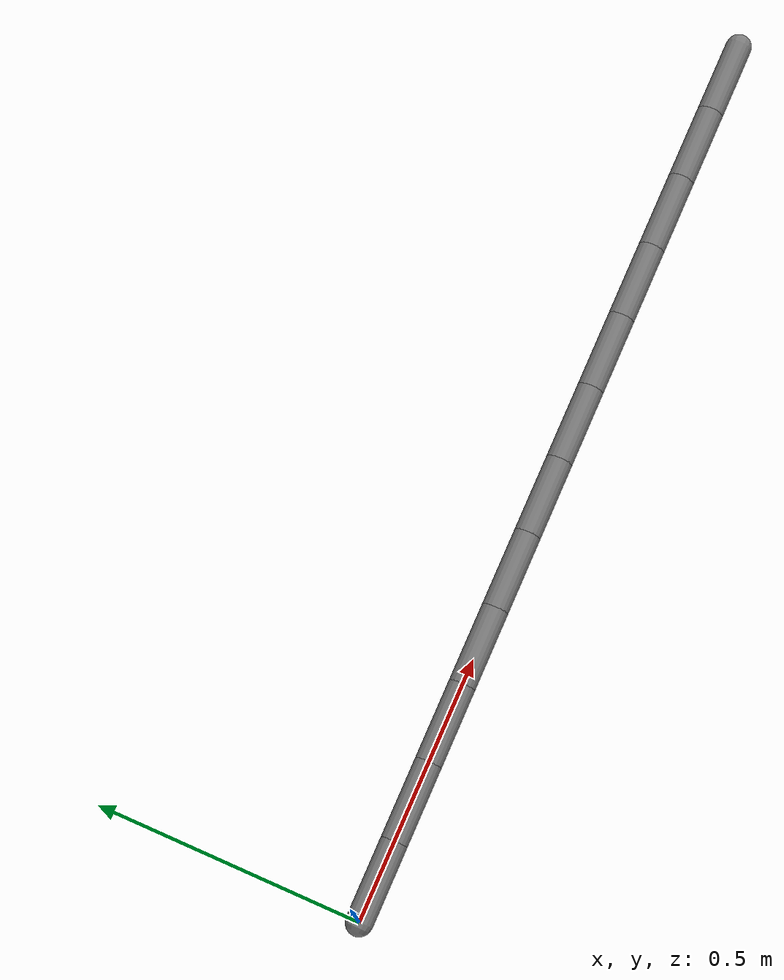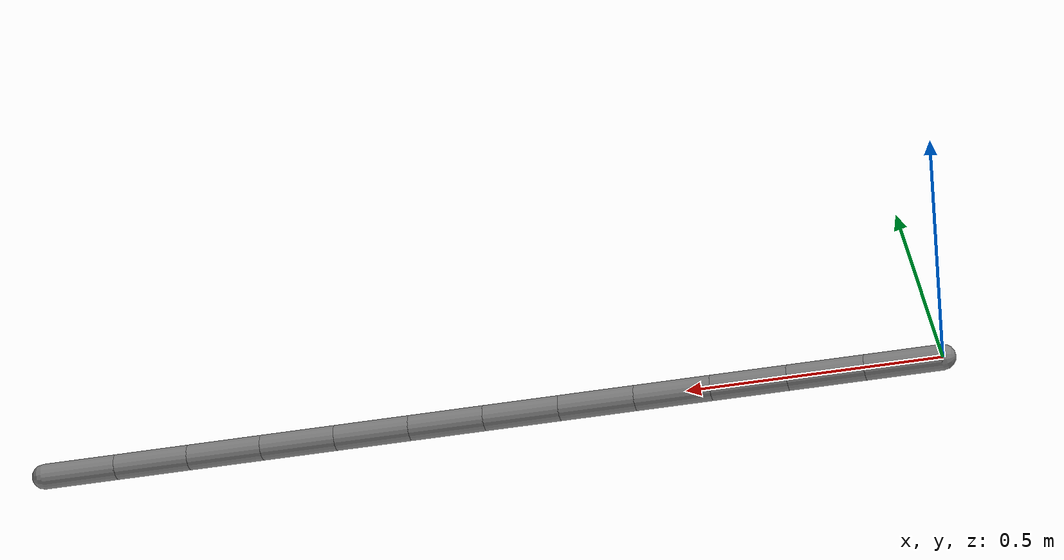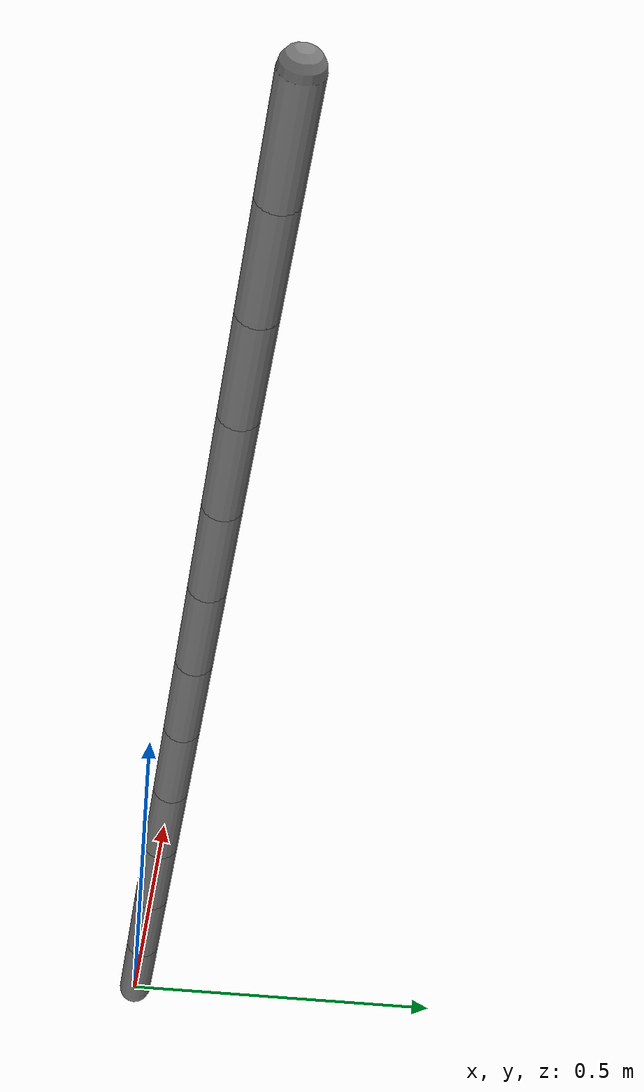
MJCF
<mujoco model="native_upgrade_articulated_chain">
  <compiler angle="radian"/>
  <option timestep="0.004" gravity="0 0 0" integrator="RK4"/>
  <default>
    <joint armature="0.01" damping="0.04"/>
    <geom type="capsule" size="0.025" fromto="0 0 0 0.15 0 0" density="250" contype="0" conaffinity="0"/>
    <motor gear="0.25" ctrllimited="true" ctrlrange="-1 1"/>
  </default>
  <worldbody>
    <body name="link_01"><joint name="joint_01" axis="0 0 1"/><geom name="geom_01"/>
      <body name="link_02" pos="0.15 0 0"><joint name="joint_02" axis="0 1 0"/><geom name="geom_02"/>
        <body name="link_03" pos="0.15 0 0"><joint name="joint_03" axis="0 0 1"/><geom name="geom_03"/>
          <body name="link_04" pos="0.15 0 0"><joint name="joint_04" axis="0 1 0"/><geom name="geom_04"/>
            <body name="link_05" pos="0.15 0 0"><joint name="joint_05" axis="0 0 1"/><geom name="geom_05"/>
              <body name="link_06" pos="0.15 0 0"><joint name="joint_06" axis="0 1 0"/><geom name="geom_06"/>
                <body name="link_07" pos="0.15 0 0"><joint name="joint_07" axis="0 0 1"/><geom name="geom_07"/>
                  <body name="link_08" pos="0.15 0 0"><joint name="joint_08" axis="0 1 0"/><geom name="geom_08"/>
                    <body name="link_09" pos="0.15 0 0"><joint name="joint_09" axis="0 0 1"/><geom name="geom_09"/>
                      <body name="link_10" pos="0.15 0 0"><joint name="joint_10" axis="0 1 0"/><geom name="geom_10"/>
                        <body name="link_11" pos="0.15 0 0"><joint name="joint_11" axis="0 0 1"/><geom name="geom_11"/>
                          <body name="link_12" pos="0.15 0 0"><joint name="joint_12" axis="0 1 0"/><geom name="geom_12"/>
                            <site name="chain_tip" pos="0.15 0 0" size="0.008"/>
                          </body>
                        </body>
                      </body>
                    </body>
                  </body>
                </body>
              </body>
            </body>
          </body>
        </body>
      </body>
    </body>
  </worldbody>
  <actuator>
    <motor name="drive_01" joint="joint_01"/><motor name="drive_02" joint="joint_02"/>
    <motor name="drive_03" joint="joint_03"/><motor name="drive_04" joint="joint_04"/>
    <motor name="drive_05" joint="joint_05"/><motor name="drive_06" joint="joint_06"/>
    <motor name="drive_07" joint="joint_07"/><motor name="drive_08" joint="joint_08"/>
    <motor name="drive_09" joint="joint_09"/><motor name="drive_10" joint="joint_10"/>
    <motor name="drive_11" joint="joint_11"/><motor name="drive_12" joint="joint_12"/>
  </actuator>
  <sensor>
    <jointpos name="joint_01_position" joint="joint_01"/>
    <jointpos name="joint_06_position" joint="joint_06"/>
    <jointpos name="joint_12_position" joint="joint_12"/>
    <framepos name="chain_tip_position" objtype="site" objname="chain_tip"/>
  </sensor>
</mujoco>
